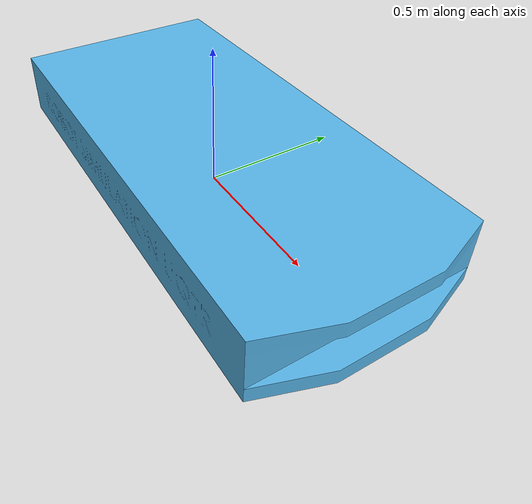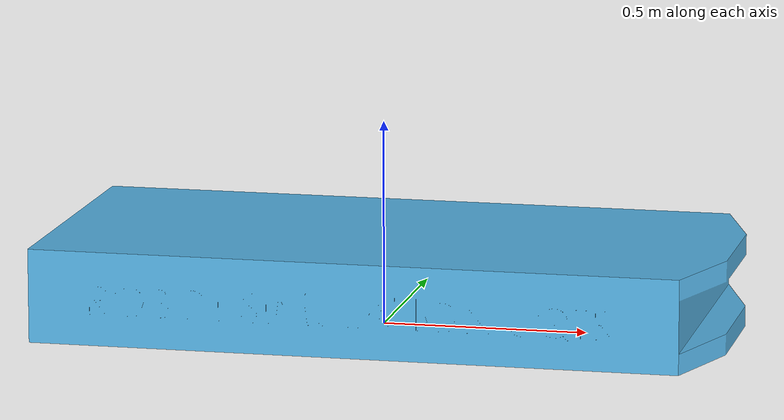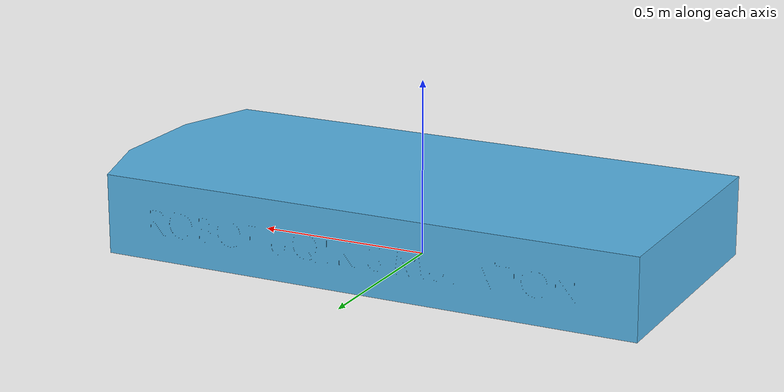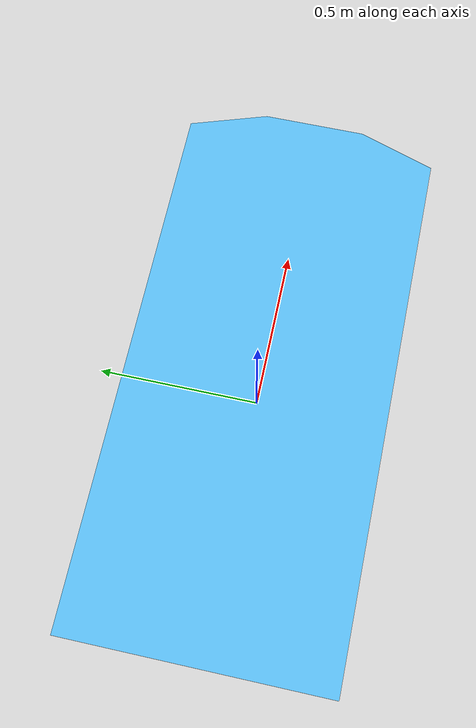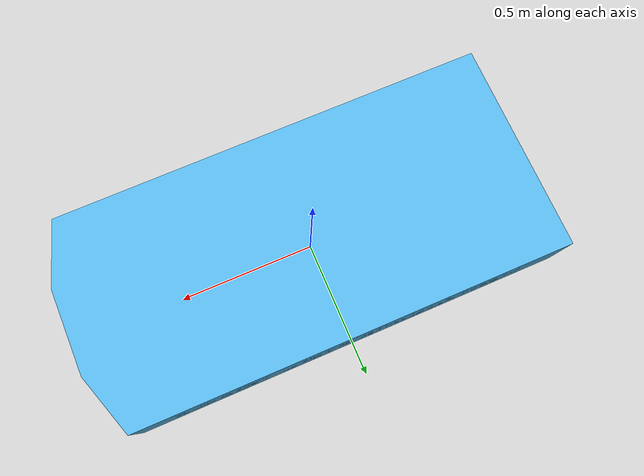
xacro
<?xml version="1.0" ?>

<robot name="Uqtr_Robot" xmlns:xacro="http://www.ros.org/wiki/xacro">

<!--Includes-->
<xacro:include filename="$(find uqtr_robot)/urdf/material.xacro" />
<xacro:include filename="$(find uqtr_robot)/urdf/robot.urdf" />
<xacro:include filename="$(find uqtr_robot)/urdf/properties.xacro" />

<!-- Friction pour les roues motrices-->
<xacro:Friction_roue_motrice wheel_name="roue_motrice_droite"/>
<xacro:Friction_roue_motrice wheel_name="roue_motrice_gauche"/>

<!-- Friction pour les roues caster-->
<xacro:Friction_roue_caster caster_name="chassis"/>

<!--Dummy-->

 <link name="base_link">
   </link>

   <joint name="dummy_joint" type="fixed">
     <origin
      xyz="0 0 0"
      rpy="0 0 0" />
     <parent link="base_link"/>
     <child link="chassis"/>
   </joint>

<!--Chassis-->
  <link
    name="chassis">
    <inertial>
      <mass
        value="49.497" />
     <inertia
        ixx="1.07"
        ixy="0"
        ixz="0.09"
        iyy="4.55"
        iyz="0"
        izz="5.30" />
    </inertial>
    <visual>
      <origin
        xyz="0 0 0"
        rpy="0 0 0" />
      <geometry>
        <mesh
          filename="package://uqtr_robot/meshes/chassis.dae" />
      </geometry>
    </visual>
    <collision>
      <origin
        xyz="0 0 0"
        rpy="0 0 0" />
      <geometry>
        <mesh
          filename="package://uqtr_robot/meshes/chassis.dae" />
      </geometry>
     <physics type="ode">
  <gravity xyz="0 0 -9.8"/>
  <ode>
    <solver type="quick" dt="0.001" iters="10" sor="1.3"/>
    <constraints cfm="0.0" erp="0.1" contact_max_correcting_vel="10.0" contact_surface_layer="0.001"/>
  </ode>
</physics>
    </collision>
  </link>

<!-- roue motrice droite -->

</robot>
